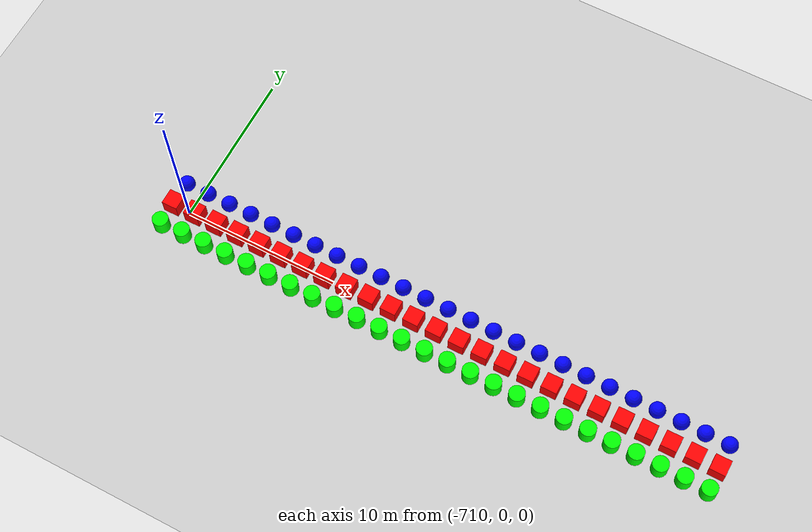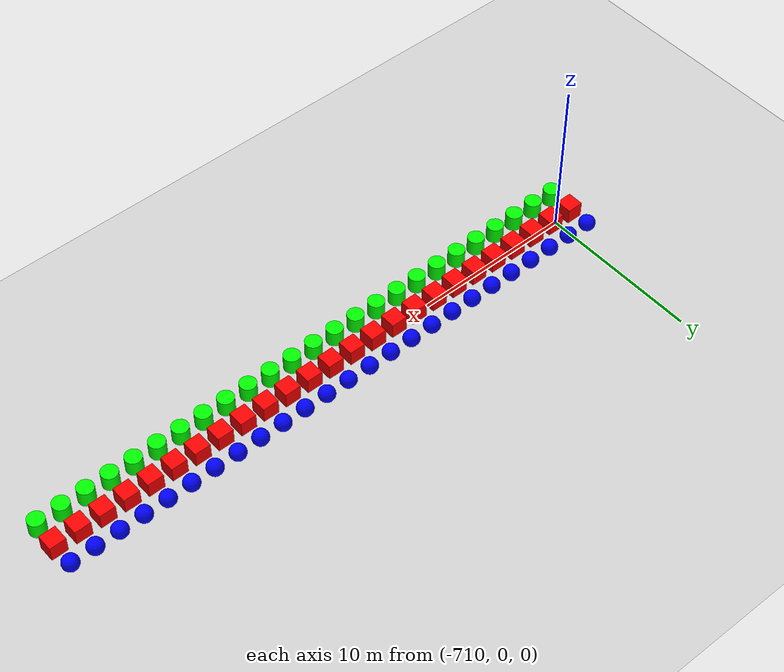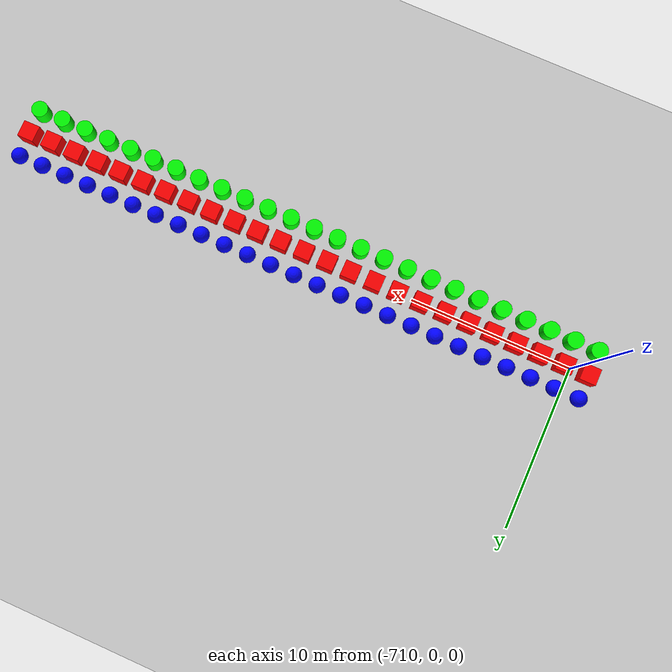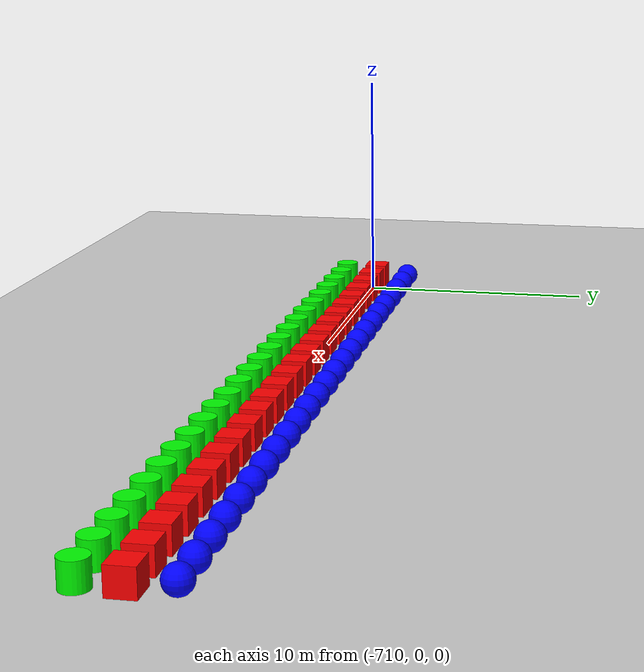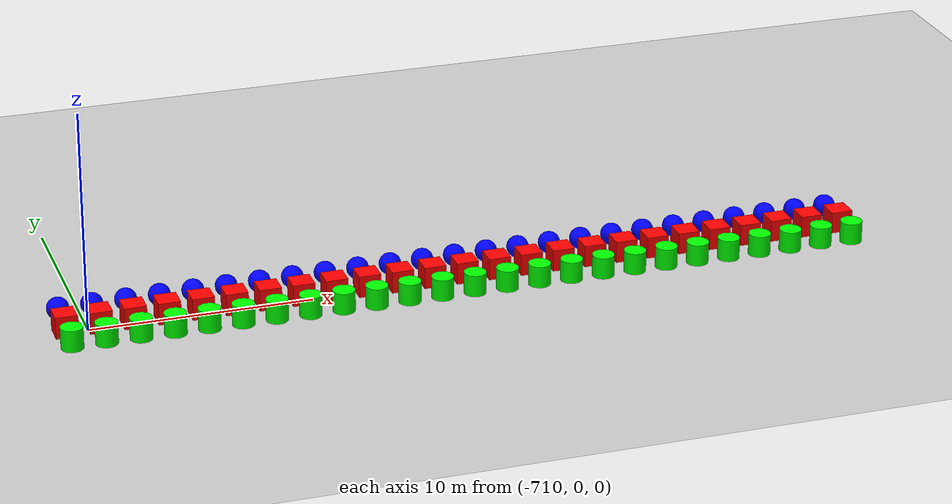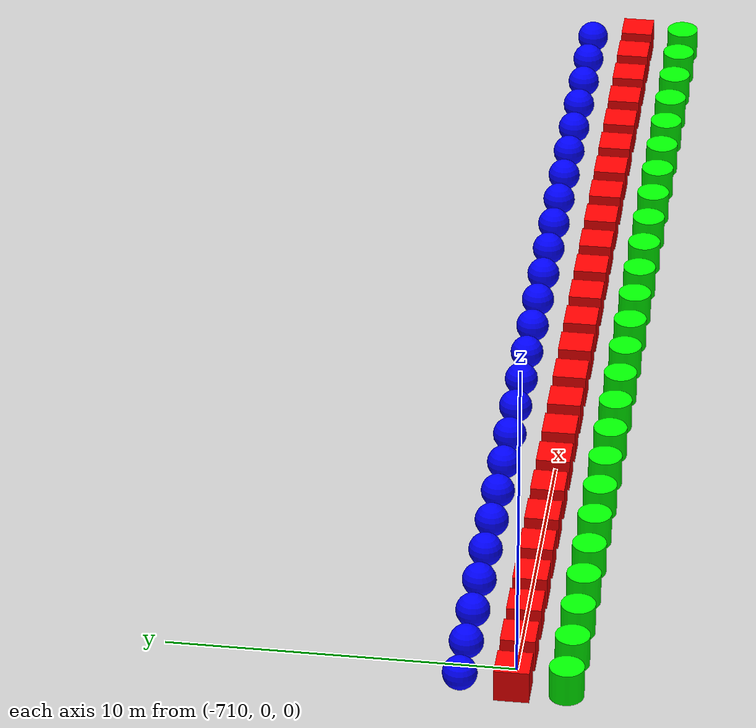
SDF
<sdf version="1.6">
 <world name="shapes">
  <model name="ground_plane">
   <static>true</static>
   <link name="link">
    <collision name="collision">
     <geometry><plane><normal>0 0 1</normal><size>100 100</size></plane></geometry>
    </collision>
    <visual name="visual">
     <geometry><plane><normal>0 0 1</normal><size>100 100</size></plane></geometry>
     <material>
      <ambient>0.8 0.8 0.8 1</ambient>
      <diffuse>0.8 0.8 0.8 1</diffuse>
      <specular>0.8 0.8 0.8 1</specular>
     </material>
    </visual>
   </link>
  </model>
  <model name="box_26">
   <static>true</static>
   <pose>-711.0 0 0.5 0 0 0</pose>
   <link name="box_link">
    <inertial>
     <inertia><ixx>1</ixx><ixy>0</ixy><ixz>0</ixz><iyy>1</iyy><iyz>0</iyz><izz>1</izz></inertia>
     <mass>1.0</mass>
    </inertial>
    <collision name="box_collision"><geometry><box><size>1 1 1</size></box></geometry></collision>
    <visual name="box_visual">
     <geometry><box><size>1 1 1</size></box></geometry>
     <material><ambient>1 0 0 1</ambient><diffuse>1 0 0 1</diffuse><specular>1 0 0 1</specular></material>
    </visual>
   </link>
  </model>
  <model name="cylinder_26">
   <static>true</static>
   <pose>-711.0 -1.5 0.5 0 0 0</pose>
   <link name="cylinder_link">
    <inertial>
     <inertia><ixx>2</ixx><ixy>0</ixy><ixz>0</ixz><iyy>2</iyy><iyz>0</iyz><izz>2</izz></inertia>
     <mass>2.0</mass>
    </inertial>
    <collision name="cylinder_collision">
     <geometry><cylinder><radius>0.5</radius><length>1.0</length></cylinder></geometry>
    </collision>
    <visual name="cylinder_visual">
     <geometry><cylinder><radius>0.5</radius><length>1.0</length></cylinder></geometry>
     <material><ambient>0 1 0 1</ambient><diffuse>0 1 0 1</diffuse><specular>0 1 0 1</specular></material>
    </visual>
   </link>
  </model>
  <model name="sphere_26">
   <static>true</static>
   <pose>-711.0 1.5 0.5 0 0 0</pose>
   <link name="sphere_link">
    <inertial>
     <inertia><ixx>3</ixx><ixy>0</ixy><ixz>0</ixz><iyy>3</iyy><iyz>0</iyz><izz>3</izz></inertia>
     <mass>3.0</mass>
    </inertial>
    <collision name="sphere_collision"><geometry><sphere><radius>0.5</radius></sphere></geometry></collision>
    <visual name="sphere_visual">
     <geometry><sphere><radius>0.5</radius></sphere></geometry>
     <material><ambient>0 0 1 1</ambient><diffuse>0 0 1 1</diffuse><specular>0 0 1 1</specular></material>
    </visual>
   </link>
  </model>
  <model name="box_27">
   <static>true</static>
   <pose>-709.5 0 0.5 0 0 0</pose>
   <link name="box_link">
    <inertial>
     <inertia><ixx>1</ixx><ixy>0</ixy><ixz>0</ixz><iyy>1</iyy><iyz>0</iyz><izz>1</izz></inertia>
     <mass>1.0</mass>
    </inertial>
    <collision name="box_collision"><geometry><box><size>1 1 1</size></box></geometry></collision>
    <visual name="box_visual">
     <geometry><box><size>1 1 1</size></box></geometry>
     <material><ambient>1 0 0 1</ambient><diffuse>1 0 0 1</diffuse><specular>1 0 0 1</specular></material>
    </visual>
   </link>
  </model>
  <model name="cylinder_27">
   <static>true</static>
   <pose>-709.5 -1.5 0.5 0 0 0</pose>
   <link name="cylinder_link">
    <inertial>
     <inertia><ixx>2</ixx><ixy>0</ixy><ixz>0</ixz><iyy>2</iyy><iyz>0</iyz><izz>2</izz></inertia>
     <mass>2.0</mass>
    </inertial>
    <collision name="cylinder_collision">
     <geometry><cylinder><radius>0.5</radius><length>1.0</length></cylinder></geometry>
    </collision>
    <visual name="cylinder_visual">
     <geometry><cylinder><radius>0.5</radius><length>1.0</length></cylinder></geometry>
     <material><ambient>0 1 0 1</ambient><diffuse>0 1 0 1</diffuse><specular>0 1 0 1</specular></material>
    </visual>
   </link>
  </model>
  <model name="sphere_27">
   <static>true</static>
   <pose>-709.5 1.5 0.5 0 0 0</pose>
   <link name="sphere_link">
    <inertial>
     <inertia><ixx>3</ixx><ixy>0</ixy><ixz>0</ixz><iyy>3</iyy><iyz>0</iyz><izz>3</izz></inertia>
     <mass>3.0</mass>
    </inertial>
    <collision name="sphere_collision"><geometry><sphere><radius>0.5</radius></sphere></geometry></collision>
    <visual name="sphere_visual">
     <geometry><sphere><radius>0.5</radius></sphere></geometry>
     <material><ambient>0 0 1 1</ambient><diffuse>0 0 1 1</diffuse><specular>0 0 1 1</specular></material>
    </visual>
   </link>
  </model>
  <model name="box_28">
   <static>true</static>
   <pose>-708.0 0 0.5 0 0 0</pose>
   <link name="box_link">
    <inertial>
     <inertia><ixx>1</ixx><ixy>0</ixy><ixz>0</ixz><iyy>1</iyy><iyz>0</iyz><izz>1</izz></inertia>
     <mass>1.0</mass>
    </inertial>
    <collision name="box_collision"><geometry><box><size>1 1 1</size></box></geometry></collision>
    <visual name="box_visual">
     <geometry><box><size>1 1 1</size></box></geometry>
     <material><ambient>1 0 0 1</ambient><diffuse>1 0 0 1</diffuse><specular>1 0 0 1</specular></material>
    </visual>
   </link>
  </model>
  <model name="cylinder_28">
   <static>true</static>
   <pose>-708.0 -1.5 0.5 0 0 0</pose>
   <link name="cylinder_link">
    <inertial>
     <inertia><ixx>2</ixx><ixy>0</ixy><ixz>0</ixz><iyy>2</iyy><iyz>0</iyz><izz>2</izz></inertia>
     <mass>2.0</mass>
    </inertial>
    <collision name="cylinder_collision">
     <geometry><cylinder><radius>0.5</radius><length>1.0</length></cylinder></geometry>
    </collision>
    <visual name="cylinder_visual">
     <geometry><cylinder><radius>0.5</radius><length>1.0</length></cylinder></geometry>
     <material><ambient>0 1 0 1</ambient><diffuse>0 1 0 1</diffuse><specular>0 1 0 1</specular></material>
    </visual>
   </link>
  </model>
  <model name="sphere_28">
   <static>true</static>
   <pose>-708.0 1.5 0.5 0 0 0</pose>
   <link name="sphere_link">
    <inertial>
     <inertia><ixx>3</ixx><ixy>0</ixy><ixz>0</ixz><iyy>3</iyy><iyz>0</iyz><izz>3</izz></inertia>
     <mass>3.0</mass>
    </inertial>
    <collision name="sphere_collision"><geometry><sphere><radius>0.5</radius></sphere></geometry></collision>
    <visual name="sphere_visual">
     <geometry><sphere><radius>0.5</radius></sphere></geometry>
     <material><ambient>0 0 1 1</ambient><diffuse>0 0 1 1</diffuse><specular>0 0 1 1</specular></material>
    </visual>
   </link>
  </model>
  <model name="box_29">
   <static>true</static>
   <pose>-706.5 0 0.5 0 0 0</pose>
   <link name="box_link">
    <inertial>
     <inertia><ixx>1</ixx><ixy>0</ixy><ixz>0</ixz><iyy>1</iyy><iyz>0</iyz><izz>1</izz></inertia>
     <mass>1.0</mass>
    </inertial>
    <collision name="box_collision"><geometry><box><size>1 1 1</size></box></geometry></collision>
    <visual name="box_visual">
     <geometry><box><size>1 1 1</size></box></geometry>
     <material><ambient>1 0 0 1</ambient><diffuse>1 0 0 1</diffuse><specular>1 0 0 1</specular></material>
    </visual>
   </link>
  </model>
  <model name="cylinder_29">
   <static>true</static>
   <pose>-706.5 -1.5 0.5 0 0 0</pose>
   <link name="cylinder_link">
    <inertial>
     <inertia><ixx>2</ixx><ixy>0</ixy><ixz>0</ixz><iyy>2</iyy><iyz>0</iyz><izz>2</izz></inertia>
     <mass>2.0</mass>
    </inertial>
    <collision name="cylinder_collision">
     <geometry><cylinder><radius>0.5</radius><length>1.0</length></cylinder></geometry>
    </collision>
    <visual name="cylinder_visual">
     <geometry><cylinder><radius>0.5</radius><length>1.0</length></cylinder></geometry>
     <material><ambient>0 1 0 1</ambient><diffuse>0 1 0 1</diffuse><specular>0 1 0 1</specular></material>
    </visual>
   </link>
  </model>
  <model name="sphere_29">
   <static>true</static>
   <pose>-706.5 1.5 0.5 0 0 0</pose>
   <link name="sphere_link">
    <inertial>
     <inertia><ixx>3</ixx><ixy>0</ixy><ixz>0</ixz><iyy>3</iyy><iyz>0</iyz><izz>3</izz></inertia>
     <mass>3.0</mass>
    </inertial>
    <collision name="sphere_collision"><geometry><sphere><radius>0.5</radius></sphere></geometry></collision>
    <visual name="sphere_visual">
     <geometry><sphere><radius>0.5</radius></sphere></geometry>
     <material><ambient>0 0 1 1</ambient><diffuse>0 0 1 1</diffuse><specular>0 0 1 1</specular></material>
    </visual>
   </link>
  </model>
  <model name="box_30">
   <static>true</static>
   <pose>-705.0 0 0.5 0 0 0</pose>
   <link name="box_link">
    <inertial>
     <inertia><ixx>1</ixx><ixy>0</ixy><ixz>0</ixz><iyy>1</iyy><iyz>0</iyz><izz>1</izz></inertia>
     <mass>1.0</mass>
    </inertial>
    <collision name="box_collision"><geometry><box><size>1 1 1</size></box></geometry></collision>
    <visual name="box_visual">
     <geometry><box><size>1 1 1</size></box></geometry>
     <material><ambient>1 0 0 1</ambient><diffuse>1 0 0 1</diffuse><specular>1 0 0 1</specular></material>
    </visual>
   </link>
  </model>
  <model name="cylinder_30">
   <static>true</static>
   <pose>-705.0 -1.5 0.5 0 0 0</pose>
   <link name="cylinder_link">
    <inertial>
     <inertia><ixx>2</ixx><ixy>0</ixy><ixz>0</ixz><iyy>2</iyy><iyz>0</iyz><izz>2</izz></inertia>
     <mass>2.0</mass>
    </inertial>
    <collision name="cylinder_collision">
     <geometry><cylinder><radius>0.5</radius><length>1.0</length></cylinder></geometry>
    </collision>
    <visual name="cylinder_visual">
     <geometry><cylinder><radius>0.5</radius><length>1.0</length></cylinder></geometry>
     <material><ambient>0 1 0 1</ambient><diffuse>0 1 0 1</diffuse><specular>0 1 0 1</specular></material>
    </visual>
   </link>
  </model>
  <model name="sphere_30">
   <static>true</static>
   <pose>-705.0 1.5 0.5 0 0 0</pose>
   <link name="sphere_link">
    <inertial>
     <inertia><ixx>3</ixx><ixy>0</ixy><ixz>0</ixz><iyy>3</iyy><iyz>0</iyz><izz>3</izz></inertia>
     <mass>3.0</mass>
    </inertial>
    <collision name="sphere_collision"><geometry><sphere><radius>0.5</radius></sphere></geometry></collision>
    <visual name="sphere_visual">
     <geometry><sphere><radius>0.5</radius></sphere></geometry>
     <material><ambient>0 0 1 1</ambient><diffuse>0 0 1 1</diffuse><specular>0 0 1 1</specular></material>
    </visual>
   </link>
  </model>
  <model name="box_31">
   <static>true</static>
   <pose>-703.5 0 0.5 0 0 0</pose>
   <link name="box_link">
    <inertial>
     <inertia><ixx>1</ixx><ixy>0</ixy><ixz>0</ixz><iyy>1</iyy><iyz>0</iyz><izz>1</izz></inertia>
     <mass>1.0</mass>
    </inertial>
    <collision name="box_collision"><geometry><box><size>1 1 1</size></box></geometry></collision>
    <visual name="box_visual">
     <geometry><box><size>1 1 1</size></box></geometry>
     <material><ambient>1 0 0 1</ambient><diffuse>1 0 0 1</diffuse><specular>1 0 0 1</specular></material>
    </visual>
   </link>
  </model>
  <model name="cylinder_31">
   <static>true</static>
   <pose>-703.5 -1.5 0.5 0 0 0</pose>
   <link name="cylinder_link">
    <inertial>
     <inertia><ixx>2</ixx><ixy>0</ixy><ixz>0</ixz><iyy>2</iyy><iyz>0</iyz><izz>2</izz></inertia>
     <mass>2.0</mass>
    </inertial>
    <collision name="cylinder_collision">
     <geometry><cylinder><radius>0.5</radius><length>1.0</length></cylinder></geometry>
    </collision>
    <visual name="cylinder_visual">
     <geometry><cylinder><radius>0.5</radius><length>1.0</length></cylinder></geometry>
     <material><ambient>0 1 0 1</ambient><diffuse>0 1 0 1</diffuse><specular>0 1 0 1</specular></material>
    </visual>
   </link>
  </model>
  <model name="sphere_31">
   <static>true</static>
   <pose>-703.5 1.5 0.5 0 0 0</pose>
   <link name="sphere_link">
    <inertial>
     <inertia><ixx>3</ixx><ixy>0</ixy><ixz>0</ixz><iyy>3</iyy><iyz>0</iyz><izz>3</izz></inertia>
     <mass>3.0</mass>
    </inertial>
    <collision name="sphere_collision"><geometry><sphere><radius>0.5</radius></sphere></geometry></collision>
    <visual name="sphere_visual">
     <geometry><sphere><radius>0.5</radius></sphere></geometry>
     <material><ambient>0 0 1 1</ambient><diffuse>0 0 1 1</diffuse><specular>0 0 1 1</specular></material>
    </visual>
   </link>
  </model>
  <model name="box_32">
   <static>true</static>
   <pose>-702.0 0 0.5 0 0 0</pose>
   <link name="box_link">
    <inertial>
     <inertia><ixx>1</ixx><ixy>0</ixy><ixz>0</ixz><iyy>1</iyy><iyz>0</iyz><izz>1</izz></inertia>
     <mass>1.0</mass>
    </inertial>
    <collision name="box_collision"><geometry><box><size>1 1 1</size></box></geometry></collision>
    <visual name="box_visual">
     <geometry><box><size>1 1 1</size></box></geometry>
     <material><ambient>1 0 0 1</ambient><diffuse>1 0 0 1</diffuse><specular>1 0 0 1</specular></material>
    </visual>
   </link>
  </model>
  <model name="cylinder_32">
   <static>true</static>
   <pose>-702.0 -1.5 0.5 0 0 0</pose>
   <link name="cylinder_link">
    <inertial>
     <inertia><ixx>2</ixx><ixy>0</ixy><ixz>0</ixz><iyy>2</iyy><iyz>0</iyz><izz>2</izz></inertia>
     <mass>2.0</mass>
    </inertial>
    <collision name="cylinder_collision">
     <geometry><cylinder><radius>0.5</radius><length>1.0</length></cylinder></geometry>
    </collision>
    <visual name="cylinder_visual">
     <geometry><cylinder><radius>0.5</radius><length>1.0</length></cylinder></geometry>
     <material><ambient>0 1 0 1</ambient><diffuse>0 1 0 1</diffuse><specular>0 1 0 1</specular></material>
    </visual>
   </link>
  </model>
  <model name="sphere_32">
   <static>true</static>
   <pose>-702.0 1.5 0.5 0 0 0</pose>
   <link name="sphere_link">
    <inertial>
     <inertia><ixx>3</ixx><ixy>0</ixy><ixz>0</ixz><iyy>3</iyy><iyz>0</iyz><izz>3</izz></inertia>
     <mass>3.0</mass>
    </inertial>
    <collision name="sphere_collision"><geometry><sphere><radius>0.5</radius></sphere></geometry></collision>
    <visual name="sphere_visual">
     <geometry><sphere><radius>0.5</radius></sphere></geometry>
     <material><ambient>0 0 1 1</ambient><diffuse>0 0 1 1</diffuse><specular>0 0 1 1</specular></material>
    </visual>
   </link>
  </model>
  <model name="box_33">
   <static>true</static>
   <pose>-700.5 0 0.5 0 0 0</pose>
   <link name="box_link">
    <inertial>
     <inertia><ixx>1</ixx><ixy>0</ixy><ixz>0</ixz><iyy>1</iyy><iyz>0</iyz><izz>1</izz></inertia>
     <mass>1.0</mass>
    </inertial>
    <collision name="box_collision"><geometry><box><size>1 1 1</size></box></geometry></collision>
    <visual name="box_visual">
     <geometry><box><size>1 1 1</size></box></geometry>
     <material><ambient>1 0 0 1</ambient><diffuse>1 0 0 1</diffuse><specular>1 0 0 1</specular></material>
    </visual>
   </link>
  </model>
  <model name="cylinder_33">
   <static>true</static>
   <pose>-700.5 -1.5 0.5 0 0 0</pose>
   <link name="cylinder_link">
    <inertial>
     <inertia><ixx>2</ixx><ixy>0</ixy><ixz>0</ixz><iyy>2</iyy><iyz>0</iyz><izz>2</izz></inertia>
     <mass>2.0</mass>
    </inertial>
    <collision name="cylinder_collision">
     <geometry><cylinder><radius>0.5</radius><length>1.0</length></cylinder></geometry>
    </collision>
    <visual name="cylinder_visual">
     <geometry><cylinder><radius>0.5</radius><length>1.0</length></cylinder></geometry>
     <material><ambient>0 1 0 1</ambient><diffuse>0 1 0 1</diffuse><specular>0 1 0 1</specular></material>
    </visual>
   </link>
  </model>
  <model name="sphere_33">
   <static>true</static>
   <pose>-700.5 1.5 0.5 0 0 0</pose>
   <link name="sphere_link">
    <inertial>
     <inertia><ixx>3</ixx><ixy>0</ixy><ixz>0</ixz><iyy>3</iyy><iyz>0</iyz><izz>3</izz></inertia>
     <mass>3.0</mass>
    </inertial>
    <collision name="sphere_collision"><geometry><sphere><radius>0.5</radius></sphere></geometry></collision>
    <visual name="sphere_visual">
     <geometry><sphere><radius>0.5</radius></sphere></geometry>
     <material><ambient>0 0 1 1</ambient><diffuse>0 0 1 1</diffuse><specular>0 0 1 1</specular></material>
    </visual>
   </link>
  </model>
  <model name="box_34">
   <static>true</static>
   <pose>-699.0 0 0.5 0 0 0</pose>
   <link name="box_link">
    <inertial>
     <inertia><ixx>1</ixx><ixy>0</ixy><ixz>0</ixz><iyy>1</iyy><iyz>0</iyz><izz>1</izz></inertia>
     <mass>1.0</mass>
    </inertial>
    <collision name="box_collision"><geometry><box><size>1 1 1</size></box></geometry></collision>
    <visual name="box_visual">
     <geometry><box><size>1 1 1</size></box></geometry>
     <material><ambient>1 0 0 1</ambient><diffuse>1 0 0 1</diffuse><specular>1 0 0 1</specular></material>
    </visual>
   </link>
  </model>
  <model name="cylinder_34">
   <static>true</static>
   <pose>-699.0 -1.5 0.5 0 0 0</pose>
   <link name="cylinder_link">
    <inertial>
     <inertia><ixx>2</ixx><ixy>0</ixy><ixz>0</ixz><iyy>2</iyy><iyz>0</iyz><izz>2</izz></inertia>
     <mass>2.0</mass>
    </inertial>
    <collision name="cylinder_collision">
     <geometry><cylinder><radius>0.5</radius><length>1.0</length></cylinder></geometry>
    </collision>
    <visual name="cylinder_visual">
     <geometry><cylinder><radius>0.5</radius><length>1.0</length></cylinder></geometry>
     <material><ambient>0 1 0 1</ambient><diffuse>0 1 0 1</diffuse><specular>0 1 0 1</specular></material>
    </visual>
   </link>
  </model>
  <model name="sphere_34">
   <static>true</static>
   <pose>-699.0 1.5 0.5 0 0 0</pose>
   <link name="sphere_link">
    <inertial>
     <inertia><ixx>3</ixx><ixy>0</ixy><ixz>0</ixz><iyy>3</iyy><iyz>0</iyz><izz>3</izz></inertia>
     <mass>3.0</mass>
    </inertial>
    <collision name="sphere_collision"><geometry><sphere><radius>0.5</radius></sphere></geometry></collision>
    <visual name="sphere_visual">
     <geometry><sphere><radius>0.5</radius></sphere></geometry>
     <material><ambient>0 0 1 1</ambient><diffuse>0 0 1 1</diffuse><specular>0 0 1 1</specular></material>
    </visual>
   </link>
  </model>
  <model name="box_35">
   <static>true</static>
   <pose>-697.5 0 0.5 0 0 0</pose>
   <link name="box_link">
    <inertial>
     <inertia><ixx>1</ixx><ixy>0</ixy><ixz>0</ixz><iyy>1</iyy><iyz>0</iyz><izz>1</izz></inertia>
     <mass>1.0</mass>
    </inertial>
    <collision name="box_collision"><geometry><box><size>1 1 1</size></box></geometry></collision>
    <visual name="box_visual">
     <geometry><box><size>1 1 1</size></box></geometry>
     <material><ambient>1 0 0 1</ambient><diffuse>1 0 0 1</diffuse><specular>1 0 0 1</specular></material>
    </visual>
   </link>
  </model>
  <model name="cylinder_35">
   <static>true</static>
   <pose>-697.5 -1.5 0.5 0 0 0</pose>
   <link name="cylinder_link">
    <inertial>
     <inertia><ixx>2</ixx><ixy>0</ixy><ixz>0</ixz><iyy>2</iyy><iyz>0</iyz><izz>2</izz></inertia>
     <mass>2.0</mass>
    </inertial>
    <collision name="cylinder_collision">
     <geometry><cylinder><radius>0.5</radius><length>1.0</length></cylinder></geometry>
    </collision>
    <visual name="cylinder_visual">
     <geometry><cylinder><radius>0.5</radius><length>1.0</length></cylinder></geometry>
     <material><ambient>0 1 0 1</ambient><diffuse>0 1 0 1</diffuse><specular>0 1 0 1</specular></material>
    </visual>
   </link>
  </model>
  <model name="sphere_35">
   <static>true</static>
   <pose>-697.5 1.5 0.5 0 0 0</pose>
   <link name="sphere_link">
    <inertial>
     <inertia><ixx>3</ixx><ixy>0</ixy><ixz>0</ixz><iyy>3</iyy><iyz>0</iyz><izz>3</izz></inertia>
     <mass>3.0</mass>
    </inertial>
    <collision name="sphere_collision"><geometry><sphere><radius>0.5</radius></sphere></geometry></collision>
    <visual name="sphere_visual">
     <geometry><sphere><radius>0.5</radius></sphere></geometry>
     <material><ambient>0 0 1 1</ambient><diffuse>0 0 1 1</diffuse><specular>0 0 1 1</specular></material>
    </visual>
   </link>
  </model>
  <model name="box_36">
   <static>true</static>
   <pose>-696.0 0 0.5 0 0 0</pose>
   <link name="box_link">
    <inertial>
     <inertia><ixx>1</ixx><ixy>0</ixy><ixz>0</ixz><iyy>1</iyy><iyz>0</iyz><izz>1</izz></inertia>
     <mass>1.0</mass>
    </inertial>
    <collision name="box_collision"><geometry><box><size>1 1 1</size></box></geometry></collision>
    <visual name="box_visual">
     <geometry><box><size>1 1 1</size></box></geometry>
     <material><ambient>1 0 0 1</ambient><diffuse>1 0 0 1</diffuse><specular>1 0 0 1</specular></material>
    </visual>
   </link>
  </model>
  <model name="cylinder_36">
   <static>true</static>
   <pose>-696.0 -1.5 0.5 0 0 0</pose>
   <link name="cylinder_link">
    <inertial>
     <inertia><ixx>2</ixx><ixy>0</ixy><ixz>0</ixz><iyy>2</iyy><iyz>0</iyz><izz>2</izz></inertia>
     <mass>2.0</mass>
    </inertial>
    <collision name="cylinder_collision">
     <geometry><cylinder><radius>0.5</radius><length>1.0</length></cylinder></geometry>
    </collision>
    <visual name="cylinder_visual">
     <geometry><cylinder><radius>0.5</radius><length>1.0</length></cylinder></geometry>
     <material><ambient>0 1 0 1</ambient><diffuse>0 1 0 1</diffuse><specular>0 1 0 1</specular></material>
    </visual>
   </link>
  </model>
  <model name="sphere_36">
   <static>true</static>
   <pose>-696.0 1.5 0.5 0 0 0</pose>
   <link name="sphere_link">
    <inertial>
     <inertia><ixx>3</ixx><ixy>0</ixy><ixz>0</ixz><iyy>3</iyy><iyz>0</iyz><izz>3</izz></inertia>
     <mass>3.0</mass>
    </inertial>
    <collision name="sphere_collision"><geometry><sphere><radius>0.5</radius></sphere></geometry></collision>
    <visual name="sphere_visual">
     <geometry><sphere><radius>0.5</radius></sphere></geometry>
     <material><ambient>0 0 1 1</ambient><diffuse>0 0 1 1</diffuse><specular>0 0 1 1</specular></material>
    </visual>
   </link>
  </model>
  <model name="box_37">
   <static>true</static>
   <pose>-694.5 0 0.5 0 0 0</pose>
   <link name="box_link">
    <inertial>
     <inertia><ixx>1</ixx><ixy>0</ixy><ixz>0</ixz><iyy>1</iyy><iyz>0</iyz><izz>1</izz></inertia>
     <mass>1.0</mass>
    </inertial>
    <collision name="box_collision"><geometry><box><size>1 1 1</size></box></geometry></collision>
    <visual name="box_visual">
     <geometry><box><size>1 1 1</size></box></geometry>
     <material><ambient>1 0 0 1</ambient><diffuse>1 0 0 1</diffuse><specular>1 0 0 1</specular></material>
    </visual>
   </link>
  </model>
  <model name="cylinder_37">
   <static>true</static>
   <pose>-694.5 -1.5 0.5 0 0 0</pose>
   <link name="cylinder_link">
    <inertial>
     <inertia><ixx>2</ixx><ixy>0</ixy><ixz>0</ixz><iyy>2</iyy><iyz>0</iyz><izz>2</izz></inertia>
     <mass>2.0</mass>
    </inertial>
    <collision name="cylinder_collision">
     <geometry><cylinder><radius>0.5</radius><length>1.0</length></cylinder></geometry>
    </collision>
    <visual name="cylinder_visual">
     <geometry><cylinder><radius>0.5</radius><length>1.0</length></cylinder></geometry>
     <material><ambient>0 1 0 1</ambient><diffuse>0 1 0 1</diffuse><specular>0 1 0 1</specular></material>
    </visual>
   </link>
  </model>
  <model name="sphere_37">
   <static>true</static>
   <pose>-694.5 1.5 0.5 0 0 0</pose>
   <link name="sphere_link">
    <inertial>
     <inertia><ixx>3</ixx><ixy>0</ixy><ixz>0</ixz><iyy>3</iyy><iyz>0</iyz><izz>3</izz></inertia>
     <mass>3.0</mass>
    </inertial>
    <collision name="sphere_collision"><geometry><sphere><radius>0.5</radius></sphere></geometry></collision>
    <visual name="sphere_visual">
     <geometry><sphere><radius>0.5</radius></sphere></geometry>
     <material><ambient>0 0 1 1</ambient><diffuse>0 0 1 1</diffuse><specular>0 0 1 1</specular></material>
    </visual>
   </link>
  </model>
  <model name="box_38">
   <static>true</static>
   <pose>-693.0 0 0.5 0 0 0</pose>
   <link name="box_link">
    <inertial>
     <inertia><ixx>1</ixx><ixy>0</ixy><ixz>0</ixz><iyy>1</iyy><iyz>0</iyz><izz>1</izz></inertia>
     <mass>1.0</mass>
    </inertial>
    <collision name="box_collision"><geometry><box><size>1 1 1</size></box></geometry></collision>
    <visual name="box_visual">
     <geometry><box><size>1 1 1</size></box></geometry>
     <material><ambient>1 0 0 1</ambient><diffuse>1 0 0 1</diffuse><specular>1 0 0 1</specular></material>
    </visual>
   </link>
  </model>
  <model name="cylinder_38">
   <static>true</static>
   <pose>-693.0 -1.5 0.5 0 0 0</pose>
   <link name="cylinder_link">
    <inertial>
     <inertia><ixx>2</ixx><ixy>0</ixy><ixz>0</ixz><iyy>2</iyy><iyz>0</iyz><izz>2</izz></inertia>
     <mass>2.0</mass>
    </inertial>
    <collision name="cylinder_collision">
     <geometry><cylinder><radius>0.5</radius><length>1.0</length></cylinder></geometry>
    </collision>
    <visual name="cylinder_visual">
     <geometry><cylinder><radius>0.5</radius><length>1.0</length></cylinder></geometry>
     <material><ambient>0 1 0 1</ambient><diffuse>0 1 0 1</diffuse><specular>0 1 0 1</specular></material>
    </visual>
   </link>
  </model>
  <model name="sphere_38">
   <static>true</static>
   <pose>-693.0 1.5 0.5 0 0 0</pose>
   <link name="sphere_link">
    <inertial>
     <inertia><ixx>3</ixx><ixy>0</ixy><ixz>0</ixz><iyy>3</iyy><iyz>0</iyz><izz>3</izz></inertia>
     <mass>3.0</mass>
    </inertial>
    <collision name="sphere_collision"><geometry><sphere><radius>0.5</radius></sphere></geometry></collision>
    <visual name="sphere_visual">
     <geometry><sphere><radius>0.5</radius></sphere></geometry>
     <material><ambient>0 0 1 1</ambient><diffuse>0 0 1 1</diffuse><specular>0 0 1 1</specular></material>
    </visual>
   </link>
  </model>
  <model name="box_39">
   <static>true</static>
   <pose>-691.5 0 0.5 0 0 0</pose>
   <link name="box_link">
    <inertial>
     <inertia><ixx>1</ixx><ixy>0</ixy><ixz>0</ixz><iyy>1</iyy><iyz>0</iyz><izz>1</izz></inertia>
     <mass>1.0</mass>
    </inertial>
    <collision name="box_collision"><geometry><box><size>1 1 1</size></box></geometry></collision>
    <visual name="box_visual">
     <geometry><box><size>1 1 1</size></box></geometry>
     <material><ambient>1 0 0 1</ambient><diffuse>1 0 0 1</diffuse><specular>1 0 0 1</specular></material>
    </visual>
   </link>
  </model>
  <model name="cylinder_39">
   <static>true</static>
   <pose>-691.5 -1.5 0.5 0 0 0</pose>
   <link name="cylinder_link">
    <inertial>
     <inertia><ixx>2</ixx><ixy>0</ixy><ixz>0</ixz><iyy>2</iyy><iyz>0</iyz><izz>2</izz></inertia>
     <mass>2.0</mass>
    </inertial>
    <collision name="cylinder_collision">
     <geometry><cylinder><radius>0.5</radius><length>1.0</length></cylinder></geometry>
    </collision>
    <visual name="cylinder_visual">
     <geometry><cylinder><radius>0.5</radius><length>1.0</length></cylinder></geometry>
     <material><ambient>0 1 0 1</ambient><diffuse>0 1 0 1</diffuse><specular>0 1 0 1</specular></material>
    </visual>
   </link>
  </model>
  <model name="sphere_39">
   <static>true</static>
   <pose>-691.5 1.5 0.5 0 0 0</pose>
   <link name="sphere_link">
    <inertial>
     <inertia><ixx>3</ixx><ixy>0</ixy><ixz>0</ixz><iyy>3</iyy><iyz>0</iyz><izz>3</izz></inertia>
     <mass>3.0</mass>
    </inertial>
    <collision name="sphere_collision"><geometry><sphere><radius>0.5</radius></sphere></geometry></collision>
    <visual name="sphere_visual">
     <geometry><sphere><radius>0.5</radius></sphere></geometry>
     <material><ambient>0 0 1 1</ambient><diffuse>0 0 1 1</diffuse><specular>0 0 1 1</specular></material>
    </visual>
   </link>
  </model>
  <model name="box_40">
   <static>true</static>
   <pose>-690.0 0 0.5 0 0 0</pose>
   <link name="box_link">
    <inertial>
     <inertia><ixx>1</ixx><ixy>0</ixy><ixz>0</ixz><iyy>1</iyy><iyz>0</iyz><izz>1</izz></inertia>
     <mass>1.0</mass>
    </inertial>
    <collision name="box_collision"><geometry><box><size>1 1 1</size></box></geometry></collision>
    <visual name="box_visual">
     <geometry><box><size>1 1 1</size></box></geometry>
     <material><ambient>1 0 0 1</ambient><diffuse>1 0 0 1</diffuse><specular>1 0 0 1</specular></material>
    </visual>
   </link>
  </model>
  <model name="cylinder_40">
   <static>true</static>
   <pose>-690.0 -1.5 0.5 0 0 0</pose>
   <link name="cylinder_link">
    <inertial>
     <inertia><ixx>2</ixx><ixy>0</ixy><ixz>0</ixz><iyy>2</iyy><iyz>0</iyz><izz>2</izz></inertia>
     <mass>2.0</mass>
    </inertial>
    <collision name="cylinder_collision">
     <geometry><cylinder><radius>0.5</radius><length>1.0</length></cylinder></geometry>
    </collision>
    <visual name="cylinder_visual">
     <geometry><cylinder><radius>0.5</radius><length>1.0</length></cylinder></geometry>
     <material><ambient>0 1 0 1</ambient><diffuse>0 1 0 1</diffuse><specular>0 1 0 1</specular></material>
    </visual>
   </link>
  </model>
  <model name="sphere_40">
   <static>true</static>
   <pose>-690.0 1.5 0.5 0 0 0</pose>
   <link name="sphere_link">
    <inertial>
     <inertia><ixx>3</ixx><ixy>0</ixy><ixz>0</ixz><iyy>3</iyy><iyz>0</iyz><izz>3</izz></inertia>
     <mass>3.0</mass>
    </inertial>
    <collision name="sphere_collision"><geometry><sphere><radius>0.5</radius></sphere></geometry></collision>
    <visual name="sphere_visual">
     <geometry><sphere><radius>0.5</radius></sphere></geometry>
     <material><ambient>0 0 1 1</ambient><diffuse>0 0 1 1</diffuse><specular>0 0 1 1</specular></material>
    </visual>
   </link>
  </model>
  <model name="box_41">
   <static>true</static>
   <pose>-688.5 0 0.5 0 0 0</pose>
   <link name="box_link">
    <inertial>
     <inertia><ixx>1</ixx><ixy>0</ixy><ixz>0</ixz><iyy>1</iyy><iyz>0</iyz><izz>1</izz></inertia>
     <mass>1.0</mass>
    </inertial>
    <collision name="box_collision"><geometry><box><size>1 1 1</size></box></geometry></collision>
    <visual name="box_visual">
     <geometry><box><size>1 1 1</size></box></geometry>
     <material><ambient>1 0 0 1</ambient><diffuse>1 0 0 1</diffuse><specular>1 0 0 1</specular></material>
    </visual>
   </link>
  </model>
  <model name="cylinder_41">
   <static>true</static>
   <pose>-688.5 -1.5 0.5 0 0 0</pose>
   <link name="cylinder_link">
    <inertial>
     <inertia><ixx>2</ixx><ixy>0</ixy><ixz>0</ixz><iyy>2</iyy><iyz>0</iyz><izz>2</izz></inertia>
     <mass>2.0</mass>
    </inertial>
    <collision name="cylinder_collision">
     <geometry><cylinder><radius>0.5</radius><length>1.0</length></cylinder></geometry>
    </collision>
    <visual name="cylinder_visual">
     <geometry><cylinder><radius>0.5</radius><length>1.0</length></cylinder></geometry>
     <material><ambient>0 1 0 1</ambient><diffuse>0 1 0 1</diffuse><specular>0 1 0 1</specular></material>
    </visual>
   </link>
  </model>
  <model name="sphere_41">
   <static>true</static>
   <pose>-688.5 1.5 0.5 0 0 0</pose>
   <link name="sphere_link">
    <inertial>
     <inertia><ixx>3</ixx><ixy>0</ixy><ixz>0</ixz><iyy>3</iyy><iyz>0</iyz><izz>3</izz></inertia>
     <mass>3.0</mass>
    </inertial>
    <collision name="sphere_collision"><geometry><sphere><radius>0.5</radius></sphere></geometry></collision>
    <visual name="sphere_visual">
     <geometry><sphere><radius>0.5</radius></sphere></geometry>
     <material><ambient>0 0 1 1</ambient><diffuse>0 0 1 1</diffuse><specular>0 0 1 1</specular></material>
    </visual>
   </link>
  </model>
  <model name="box_42">
   <static>true</static>
   <pose>-687.0 0 0.5 0 0 0</pose>
   <link name="box_link">
    <inertial>
     <inertia><ixx>1</ixx><ixy>0</ixy><ixz>0</ixz><iyy>1</iyy><iyz>0</iyz><izz>1</izz></inertia>
     <mass>1.0</mass>
    </inertial>
    <collision name="box_collision"><geometry><box><size>1 1 1</size></box></geometry></collision>
    <visual name="box_visual">
     <geometry><box><size>1 1 1</size></box></geometry>
     <material><ambient>1 0 0 1</ambient><diffuse>1 0 0 1</diffuse><specular>1 0 0 1</specular></material>
    </visual>
   </link>
  </model>
  <model name="cylinder_42">
   <static>true</static>
   <pose>-687.0 -1.5 0.5 0 0 0</pose>
   <link name="cylinder_link">
    <inertial>
     <inertia><ixx>2</ixx><ixy>0</ixy><ixz>0</ixz><iyy>2</iyy><iyz>0</iyz><izz>2</izz></inertia>
     <mass>2.0</mass>
    </inertial>
    <collision name="cylinder_collision">
     <geometry><cylinder><radius>0.5</radius><length>1.0</length></cylinder></geometry>
    </collision>
    <visual name="cylinder_visual">
     <geometry><cylinder><radius>0.5</radius><length>1.0</length></cylinder></geometry>
     <material><ambient>0 1 0 1</ambient><diffuse>0 1 0 1</diffuse><specular>0 1 0 1</specular></material>
    </visual>
   </link>
  </model>
  <model name="sphere_42">
   <static>true</static>
   <pose>-687.0 1.5 0.5 0 0 0</pose>
   <link name="sphere_link">
    <inertial>
     <inertia><ixx>3</ixx><ixy>0</ixy><ixz>0</ixz><iyy>3</iyy><iyz>0</iyz><izz>3</izz></inertia>
     <mass>3.0</mass>
    </inertial>
    <collision name="sphere_collision"><geometry><sphere><radius>0.5</radius></sphere></geometry></collision>
    <visual name="sphere_visual">
     <geometry><sphere><radius>0.5</radius></sphere></geometry>
     <material><ambient>0 0 1 1</ambient><diffuse>0 0 1 1</diffuse><specular>0 0 1 1</specular></material>
    </visual>
   </link>
  </model>
  <model name="box_43">
   <static>true</static>
   <pose>-685.5 0 0.5 0 0 0</pose>
   <link name="box_link">
    <inertial>
     <inertia><ixx>1</ixx><ixy>0</ixy><ixz>0</ixz><iyy>1</iyy><iyz>0</iyz><izz>1</izz></inertia>
     <mass>1.0</mass>
    </inertial>
    <collision name="box_collision"><geometry><box><size>1 1 1</size></box></geometry></collision>
    <visual name="box_visual">
     <geometry><box><size>1 1 1</size></box></geometry>
     <material><ambient>1 0 0 1</ambient><diffuse>1 0 0 1</diffuse><specular>1 0 0 1</specular></material>
    </visual>
   </link>
  </model>
  <model name="cylinder_43">
   <static>true</static>
   <pose>-685.5 -1.5 0.5 0 0 0</pose>
   <link name="cylinder_link">
    <inertial>
     <inertia><ixx>2</ixx><ixy>0</ixy><ixz>0</ixz><iyy>2</iyy><iyz>0</iyz><izz>2</izz></inertia>
     <mass>2.0</mass>
    </inertial>
    <collision name="cylinder_collision">
     <geometry><cylinder><radius>0.5</radius><length>1.0</length></cylinder></geometry>
    </collision>
    <visual name="cylinder_visual">
     <geometry><cylinder><radius>0.5</radius><length>1.0</length></cylinder></geometry>
     <material><ambient>0 1 0 1</ambient><diffuse>0 1 0 1</diffuse><specular>0 1 0 1</specular></material>
    </visual>
   </link>
  </model>
  <model name="sphere_43">
   <static>true</static>
   <pose>-685.5 1.5 0.5 0 0 0</pose>
   <link name="sphere_link">
    <inertial>
     <inertia><ixx>3</ixx><ixy>0</ixy><ixz>0</ixz><iyy>3</iyy><iyz>0</iyz><izz>3</izz></inertia>
     <mass>3.0</mass>
    </inertial>
    <collision name="sphere_collision"><geometry><sphere><radius>0.5</radius></sphere></geometry></collision>
    <visual name="sphere_visual">
     <geometry><sphere><radius>0.5</radius></sphere></geometry>
     <material><ambient>0 0 1 1</ambient><diffuse>0 0 1 1</diffuse><specular>0 0 1 1</specular></material>
    </visual>
   </link>
  </model>
  <model name="box_44">
   <static>true</static>
   <pose>-684.0 0 0.5 0 0 0</pose>
   <link name="box_link">
    <inertial>
     <inertia><ixx>1</ixx><ixy>0</ixy><ixz>0</ixz><iyy>1</iyy><iyz>0</iyz><izz>1</izz></inertia>
     <mass>1.0</mass>
    </inertial>
    <collision name="box_collision"><geometry><box><size>1 1 1</size></box></geometry></collision>
    <visual name="box_visual">
     <geometry><box><size>1 1 1</size></box></geometry>
     <material><ambient>1 0 0 1</ambient><diffuse>1 0 0 1</diffuse><specular>1 0 0 1</specular></material>
    </visual>
   </link>
  </model>
  <model name="cylinder_44">
   <static>true</static>
   <pose>-684.0 -1.5 0.5 0 0 0</pose>
   <link name="cylinder_link">
    <inertial>
     <inertia><ixx>2</ixx><ixy>0</ixy><ixz>0</ixz><iyy>2</iyy><iyz>0</iyz><izz>2</izz></inertia>
     <mass>2.0</mass>
    </inertial>
    <collision name="cylinder_collision">
     <geometry><cylinder><radius>0.5</radius><length>1.0</length></cylinder></geometry>
    </collision>
    <visual name="cylinder_visual">
     <geometry><cylinder><radius>0.5</radius><length>1.0</length></cylinder></geometry>
     <material><ambient>0 1 0 1</ambient><diffuse>0 1 0 1</diffuse><specular>0 1 0 1</specular></material>
    </visual>
   </link>
  </model>
  <model name="sphere_44">
   <static>true</static>
   <pose>-684.0 1.5 0.5 0 0 0</pose>
   <link name="sphere_link">
    <inertial>
     <inertia><ixx>3</ixx><ixy>0</ixy><ixz>0</ixz><iyy>3</iyy><iyz>0</iyz><izz>3</izz></inertia>
     <mass>3.0</mass>
    </inertial>
    <collision name="sphere_collision"><geometry><sphere><radius>0.5</radius></sphere></geometry></collision>
    <visual name="sphere_visual">
     <geometry><sphere><radius>0.5</radius></sphere></geometry>
     <material><ambient>0 0 1 1</ambient><diffuse>0 0 1 1</diffuse><specular>0 0 1 1</specular></material>
    </visual>
   </link>
  </model>
  <model name="box_45">
   <static>true</static>
   <pose>-682.5 0 0.5 0 0 0</pose>
   <link name="box_link">
    <inertial>
     <inertia><ixx>1</ixx><ixy>0</ixy><ixz>0</ixz><iyy>1</iyy><iyz>0</iyz><izz>1</izz></inertia>
     <mass>1.0</mass>
    </inertial>
    <collision name="box_collision"><geometry><box><size>1 1 1</size></box></geometry></collision>
    <visual name="box_visual">
     <geometry><box><size>1 1 1</size></box></geometry>
     <material><ambient>1 0 0 1</ambient><diffuse>1 0 0 1</diffuse><specular>1 0 0 1</specular></material>
    </visual>
   </link>
  </model>
  <model name="cylinder_45">
   <static>true</static>
   <pose>-682.5 -1.5 0.5 0 0 0</pose>
   <link name="cylinder_link">
    <inertial>
     <inertia><ixx>2</ixx><ixy>0</ixy><ixz>0</ixz><iyy>2</iyy><iyz>0</iyz><izz>2</izz></inertia>
     <mass>2.0</mass>
    </inertial>
    <collision name="cylinder_collision">
     <geometry><cylinder><radius>0.5</radius><length>1.0</length></cylinder></geometry>
    </collision>
    <visual name="cylinder_visual">
     <geometry><cylinder><radius>0.5</radius><length>1.0</length></cylinder></geometry>
     <material><ambient>0 1 0 1</ambient><diffuse>0 1 0 1</diffuse><specular>0 1 0 1</specular></material>
    </visual>
   </link>
  </model>
  <model name="sphere_45">
   <static>true</static>
   <pose>-682.5 1.5 0.5 0 0 0</pose>
   <link name="sphere_link">
    <inertial>
     <inertia><ixx>3</ixx><ixy>0</ixy><ixz>0</ixz><iyy>3</iyy><iyz>0</iyz><izz>3</izz></inertia>
     <mass>3.0</mass>
    </inertial>
    <collision name="sphere_collision"><geometry><sphere><radius>0.5</radius></sphere></geometry></collision>
    <visual name="sphere_visual">
     <geometry><sphere><radius>0.5</radius></sphere></geometry>
     <material><ambient>0 0 1 1</ambient><diffuse>0 0 1 1</diffuse><specular>0 0 1 1</specular></material>
    </visual>
   </link>
  </model>
  <model name="box_46">
   <static>true</static>
   <pose>-681.0 0 0.5 0 0 0</pose>
   <link name="box_link">
    <inertial>
     <inertia><ixx>1</ixx><ixy>0</ixy><ixz>0</ixz><iyy>1</iyy><iyz>0</iyz><izz>1</izz></inertia>
     <mass>1.0</mass>
    </inertial>
    <collision name="box_collision"><geometry><box><size>1 1 1</size></box></geometry></collision>
    <visual name="box_visual">
     <geometry><box><size>1 1 1</size></box></geometry>
     <material><ambient>1 0 0 1</ambient><diffuse>1 0 0 1</diffuse><specular>1 0 0 1</specular></material>
    </visual>
   </link>
  </model>
  <model name="cylinder_46">
   <static>true</static>
   <pose>-681.0 -1.5 0.5 0 0 0</pose>
   <link name="cylinder_link">
    <inertial>
     <inertia><ixx>2</ixx><ixy>0</ixy><ixz>0</ixz><iyy>2</iyy><iyz>0</iyz><izz>2</izz></inertia>
     <mass>2.0</mass>
    </inertial>
    <collision name="cylinder_collision">
     <geometry><cylinder><radius>0.5</radius><length>1.0</length></cylinder></geometry>
    </collision>
    <visual name="cylinder_visual">
     <geometry><cylinder><radius>0.5</radius><length>1.0</length></cylinder></geometry>
     <material><ambient>0 1 0 1</ambient><diffuse>0 1 0 1</diffuse><specular>0 1 0 1</specular></material>
    </visual>
   </link>
  </model>
  <model name="sphere_46">
   <static>true</static>
   <pose>-681.0 1.5 0.5 0 0 0</pose>
   <link name="sphere_link">
    <inertial>
     <inertia><ixx>3</ixx><ixy>0</ixy><ixz>0</ixz><iyy>3</iyy><iyz>0</iyz><izz>3</izz></inertia>
     <mass>3.0</mass>
    </inertial>
    <collision name="sphere_collision"><geometry><sphere><radius>0.5</radius></sphere></geometry></collision>
    <visual name="sphere_visual">
     <geometry><sphere><radius>0.5</radius></sphere></geometry>
     <material><ambient>0 0 1 1</ambient><diffuse>0 0 1 1</diffuse><specular>0 0 1 1</specular></material>
    </visual>
   </link>
  </model>
  <model name="box_47">
   <static>true</static>
   <pose>-679.5 0 0.5 0 0 0</pose>
   <link name="box_link">
    <inertial>
     <inertia><ixx>1</ixx><ixy>0</ixy><ixz>0</ixz><iyy>1</iyy><iyz>0</iyz><izz>1</izz></inertia>
     <mass>1.0</mass>
    </inertial>
    <collision name="box_collision"><geometry><box><size>1 1 1</size></box></geometry></collision>
    <visual name="box_visual">
     <geometry><box><size>1 1 1</size></box></geometry>
     <material><ambient>1 0 0 1</ambient><diffuse>1 0 0 1</diffuse><specular>1 0 0 1</specular></material>
    </visual>
   </link>
  </model>
  <model name="cylinder_47">
   <static>true</static>
   <pose>-679.5 -1.5 0.5 0 0 0</pose>
   <link name="cylinder_link">
    <inertial>
     <inertia><ixx>2</ixx><ixy>0</ixy><ixz>0</ixz><iyy>2</iyy><iyz>0</iyz><izz>2</izz></inertia>
     <mass>2.0</mass>
    </inertial>
    <collision name="cylinder_collision">
     <geometry><cylinder><radius>0.5</radius><length>1.0</length></cylinder></geometry>
    </collision>
    <visual name="cylinder_visual">
     <geometry><cylinder><radius>0.5</radius><length>1.0</length></cylinder></geometry>
     <material><ambient>0 1 0 1</ambient><diffuse>0 1 0 1</diffuse><specular>0 1 0 1</specular></material>
    </visual>
   </link>
  </model>
  <model name="sphere_47">
   <static>true</static>
   <pose>-679.5 1.5 0.5 0 0 0</pose>
   <link name="sphere_link">
    <inertial>
     <inertia><ixx>3</ixx><ixy>0</ixy><ixz>0</ixz><iyy>3</iyy><iyz>0</iyz><izz>3</izz></inertia>
     <mass>3.0</mass>
    </inertial>
    <collision name="sphere_collision"><geometry><sphere><radius>0.5</radius></sphere></geometry></collision>
    <visual name="sphere_visual">
     <geometry><sphere><radius>0.5</radius></sphere></geometry>
     <material><ambient>0 0 1 1</ambient><diffuse>0 0 1 1</diffuse><specular>0 0 1 1</specular></material>
    </visual>
   </link>
  </model>
  <model name="box_48">
   <static>true</static>
   <pose>-678.0 0 0.5 0 0 0</pose>
   <link name="box_link">
    <inertial>
     <inertia><ixx>1</ixx><ixy>0</ixy><ixz>0</ixz><iyy>1</iyy><iyz>0</iyz><izz>1</izz></inertia>
     <mass>1.0</mass>
    </inertial>
    <collision name="box_collision"><geometry><box><size>1 1 1</size></box></geometry></collision>
    <visual name="box_visual">
     <geometry><box><size>1 1 1</size></box></geometry>
     <material><ambient>1 0 0 1</ambient><diffuse>1 0 0 1</diffuse><specular>1 0 0 1</specular></material>
    </visual>
   </link>
  </model>
  <model name="cylinder_48">
   <static>true</static>
   <pose>-678.0 -1.5 0.5 0 0 0</pose>
   <link name="cylinder_link">
    <inertial>
     <inertia><ixx>2</ixx><ixy>0</ixy><ixz>0</ixz><iyy>2</iyy><iyz>0</iyz><izz>2</izz></inertia>
     <mass>2.0</mass>
    </inertial>
    <collision name="cylinder_collision">
     <geometry><cylinder><radius>0.5</radius><length>1.0</length></cylinder></geometry>
    </collision>
    <visual name="cylinder_visual">
     <geometry><cylinder><radius>0.5</radius><length>1.0</length></cylinder></geometry>
     <material><ambient>0 1 0 1</ambient><diffuse>0 1 0 1</diffuse><specular>0 1 0 1</specular></material>
    </visual>
   </link>
  </model>
  <model name="sphere_48">
   <static>true</static>
   <pose>-678.0 1.5 0.5 0 0 0</pose>
   <link name="sphere_link">
    <inertial>
     <inertia><ixx>3</ixx><ixy>0</ixy><ixz>0</ixz><iyy>3</iyy><iyz>0</iyz><izz>3</izz></inertia>
     <mass>3.0</mass>
    </inertial>
    <collision name="sphere_collision"><geometry><sphere><radius>0.5</radius></sphere></geometry></collision>
    <visual name="sphere_visual">
     <geometry><sphere><radius>0.5</radius></sphere></geometry>
     <material><ambient>0 0 1 1</ambient><diffuse>0 0 1 1</diffuse><specular>0 0 1 1</specular></material>
    </visual>
   </link>
  </model>
  <model name="box_49">
   <static>true</static>
   <pose>-676.5 0 0.5 0 0 0</pose>
   <link name="box_link">
    <inertial>
     <inertia><ixx>1</ixx><ixy>0</ixy><ixz>0</ixz><iyy>1</iyy><iyz>0</iyz><izz>1</izz></inertia>
     <mass>1.0</mass>
    </inertial>
    <collision name="box_collision"><geometry><box><size>1 1 1</size></box></geometry></collision>
    <visual name="box_visual">
     <geometry><box><size>1 1 1</size></box></geometry>
     <material><ambient>1 0 0 1</ambient><diffuse>1 0 0 1</diffuse><specular>1 0 0 1</specular></material>
    </visual>
   </link>
  </model>
  <model name="cylinder_49">
   <static>true</static>
   <pose>-676.5 -1.5 0.5 0 0 0</pose>
   <link name="cylinder_link">
    <inertial>
     <inertia><ixx>2</ixx><ixy>0</ixy><ixz>0</ixz><iyy>2</iyy><iyz>0</iyz><izz>2</izz></inertia>
     <mass>2.0</mass>
    </inertial>
    <collision name="cylinder_collision">
     <geometry><cylinder><radius>0.5</radius><length>1.0</length></cylinder></geometry>
    </collision>
    <visual name="cylinder_visual">
     <geometry><cylinder><radius>0.5</radius><length>1.0</length></cylinder></geometry>
     <material><ambient>0 1 0 1</ambient><diffuse>0 1 0 1</diffuse><specular>0 1 0 1</specular></material>
    </visual>
   </link>
  </model>
  <model name="sphere_49">
   <static>true</static>
   <pose>-676.5 1.5 0.5 0 0 0</pose>
   <link name="sphere_link">
    <inertial>
     <inertia><ixx>3</ixx><ixy>0</ixy><ixz>0</ixz><iyy>3</iyy><iyz>0</iyz><izz>3</izz></inertia>
     <mass>3.0</mass>
    </inertial>
    <collision name="sphere_collision"><geometry><sphere><radius>0.5</radius></sphere></geometry></collision>
    <visual name="sphere_visual">
     <geometry><sphere><radius>0.5</radius></sphere></geometry>
     <material><ambient>0 0 1 1</ambient><diffuse>0 0 1 1</diffuse><specular>0 0 1 1</specular></material>
    </visual>
   </link>
  </model>
  <model name="box_50">
   <static>true</static>
   <pose>-675.0 0 0.5 0 0 0</pose>
   <link name="box_link">
    <inertial>
     <inertia><ixx>1</ixx><ixy>0</ixy><ixz>0</ixz><iyy>1</iyy><iyz>0</iyz><izz>1</izz></inertia>
     <mass>1.0</mass>
    </inertial>
    <collision name="box_collision"><geometry><box><size>1 1 1</size></box></geometry></collision>
    <visual name="box_visual">
     <geometry><box><size>1 1 1</size></box></geometry>
     <material><ambient>1 0 0 1</ambient><diffuse>1 0 0 1</diffuse><specular>1 0 0 1</specular></material>
    </visual>
   </link>
  </model>
  <model name="cylinder_50">
   <static>true</static>
   <pose>-675.0 -1.5 0.5 0 0 0</pose>
   <link name="cylinder_link">
    <inertial>
     <inertia><ixx>2</ixx><ixy>0</ixy><ixz>0</ixz><iyy>2</iyy><iyz>0</iyz><izz>2</izz></inertia>
     <mass>2.0</mass>
    </inertial>
    <collision name="cylinder_collision">
     <geometry><cylinder><radius>0.5</radius><length>1.0</length></cylinder></geometry>
    </collision>
    <visual name="cylinder_visual">
     <geometry><cylinder><radius>0.5</radius><length>1.0</length></cylinder></geometry>
     <material><ambient>0 1 0 1</ambient><diffuse>0 1 0 1</diffuse><specular>0 1 0 1</specular></material>
    </visual>
   </link>
  </model>
  <model name="sphere_50">
   <static>true</static>
   <pose>-675.0 1.5 0.5 0 0 0</pose>
   <link name="sphere_link">
    <inertial>
     <inertia><ixx>3</ixx><ixy>0</ixy><ixz>0</ixz><iyy>3</iyy><iyz>0</iyz><izz>3</izz></inertia>
     <mass>3.0</mass>
    </inertial>
    <collision name="sphere_collision"><geometry><sphere><radius>0.5</radius></sphere></geometry></collision>
    <visual name="sphere_visual">
     <geometry><sphere><radius>0.5</radius></sphere></geometry>
     <material><ambient>0 0 1 1</ambient><diffuse>0 0 1 1</diffuse><specular>0 0 1 1</specular></material>
    </visual>
   </link>
  </model>
 </world>
</sdf>
